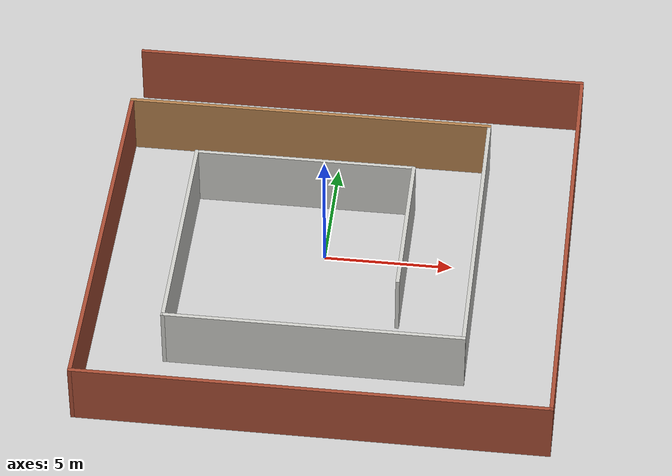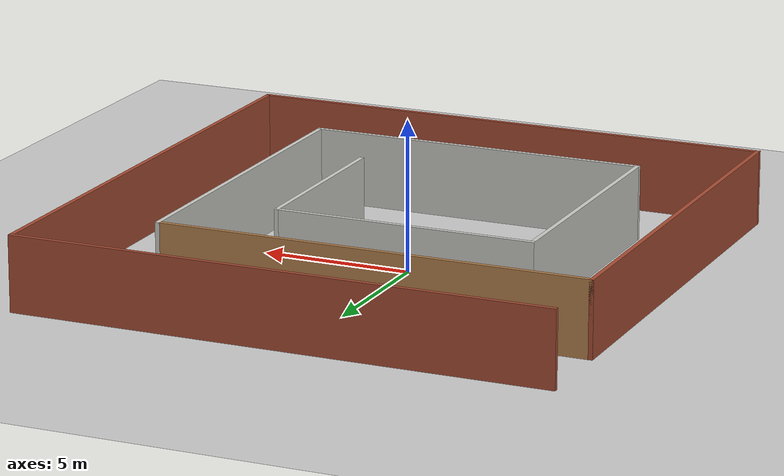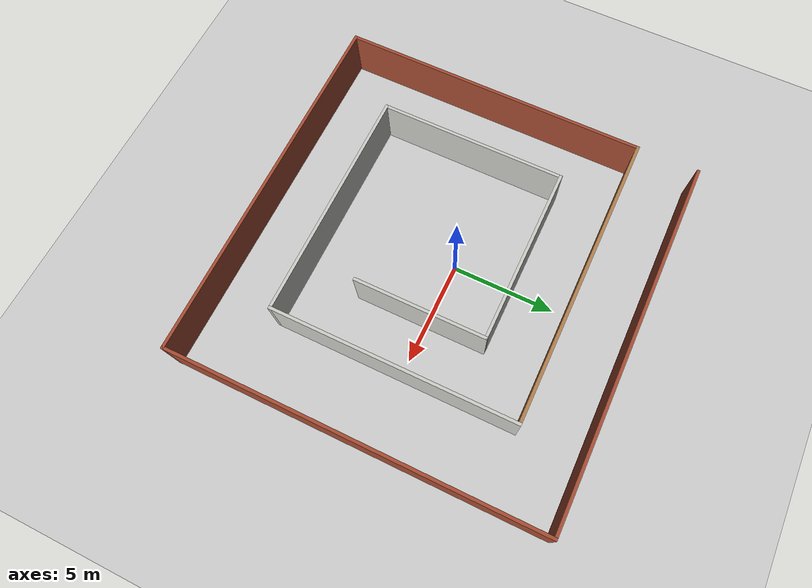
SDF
<sdf version="1.6">
 <world name="default">
  <plugin name="hi_robot" filename="libhi_robot.so"/>
  <light name="sun" type="directional">
   <pose>0 0 10 0 -0 0</pose>
   <diffuse>0.8 0.8 0.8 1</diffuse>
   <specular>0.2 0.2 0.2 1</specular>
   <attenuation>
    <range>1000</range>
    <constant>0.9</constant>
    <linear>0.01</linear>
    <quadratic>0.001</quadratic>
   </attenuation>
   <direction>-0.5 0.1 -0.9</direction>
  </light>
  <model name="ground_plane">
   <static>1</static>
   <link name="link">
    <collision name="collision">
     <geometry><plane><normal>0 0 1</normal><size>100 100</size></plane></geometry>
     <surface>
      <contact><collide_bitmask>65535</collide_bitmask></contact>
      <friction><ode><mu>100</mu><mu2>50</mu2></ode></friction>
     </surface>
    </collision>
    <visual name="visual">
     <cast_shadows>0</cast_shadows>
     <geometry><plane><normal>0 0 1</normal><size>100 100</size></plane></geometry>
     <material>
      <script><uri>file://media/materials/scripts/gazebo.material</uri><name>Gazebo/Grey</name></script>
     </material>
    </visual>
   </link>
  </model>
  <gravity>0 0 -9.8</gravity>
  <magnetic_field>6e-06 2.3e-05 -4.2e-05</magnetic_field>
  <atmosphere type="adiabatic"/>
  <physics name="default_physics" default="0" type="ode">
   <max_step_size>0.001</max_step_size>
   <real_time_factor>1</real_time_factor>
   <real_time_update_rate>1000</real_time_update_rate>
  </physics>
  <scene><ambient>0.4 0.4 0.4 1</ambient><background>0.7 0.7 0.7 1</background><shadows>1</shadows></scene>
  <audio><device>default</device></audio>
  <spherical_coordinates>
   <surface_model>EARTH_WGS84</surface_model>
   <latitude_deg>0</latitude_deg>
   <longitude_deg>0</longitude_deg>
   <elevation>0</elevation>
   <heading_deg>0</heading_deg>
  </spherical_coordinates>
  <model name="myhouse_0">
   <pose>0.51612 -0.40662 0 0 -0 0</pose>
   <link name="Wall_11">
    <collision name="Wall_11_Collision">
     <geometry><box><size>11.5 0.15 2.5</size></box></geometry>
     <pose>0 0 1.25 0 -0 0</pose>
    </collision>
    <visual name="Wall_11_Visual">
     <pose>0 0 1.25 0 -0 0</pose>
     <geometry><box><size>11.5 0.15 2.5</size></box></geometry>
     <material>
      <script><uri>file://media/materials/scripts/gazebo.material</uri><name>Gazebo/CeilingTiled</name></script>
      <ambient>1 1 1 1</ambient>
     </material>
     <meta><layer>0</layer></meta>
    </visual>
    <pose>-0.25 -5.8 0 0 -0 3.14159</pose>
   </link>
   <link name="Wall_12">
    <collision name="Wall_12_Collision">
     <geometry><box><size>9.25 0.15 2.5</size></box></geometry>
     <pose>0 0 1.25 0 -0 0</pose>
    </collision>
    <visual name="Wall_12_Visual">
     <pose>0 0 1.25 0 -0 0</pose>
     <geometry><box><size>9.25 0.15 2.5</size></box></geometry>
     <material>
      <script><uri>file://media/materials/scripts/gazebo.material</uri><name>Gazebo/CeilingTiled</name></script>
      <ambient>1 1 1 1</ambient>
     </material>
     <meta><layer>0</layer></meta>
    </visual>
    <pose>-5.925 -1.25 0 0 -0 1.5708</pose>
   </link>
   <link name="Wall_13">
    <collision name="Wall_13_Collision">
     <geometry><box><size>8.75 0.15 2.5</size></box></geometry>
     <pose>0 0 1.25 0 -0 0</pose>
    </collision>
    <visual name="Wall_13_Visual">
     <pose>0 0 1.25 0 -0 0</pose>
     <geometry><box><size>8.75 0.15 2.5</size></box></geometry>
     <material>
      <script><uri>file://media/materials/scripts/gazebo.material</uri><name>Gazebo/CeilingTiled</name></script>
      <ambient>1 1 1 1</ambient>
     </material>
     <meta><layer>0</layer></meta>
    </visual>
    <pose>-1.625 3.3 0 0 -0 0</pose>
   </link>
   <link name="Wall_14">
    <collision name="Wall_14_Collision">
     <geometry><box><size>6.5 0.15 2.5</size></box></geometry>
     <pose>0 0 1.25 0 -0 0</pose>
    </collision>
    <visual name="Wall_14_Visual">
     <pose>0 0 1.25 0 -0 0</pose>
     <geometry><box><size>6.5 0.15 2.5</size></box></geometry>
     <material>
      <script><uri>file://media/materials/scripts/gazebo.material</uri><name>Gazebo/CeilingTiled</name></script>
      <ambient>1 1 1 1</ambient>
     </material>
     <meta><layer>0</layer></meta>
    </visual>
    <pose>2.675 0.125 0 0 -0 -1.5708</pose>
   </link>
   <link name="Wall_3">
    <collision name="Wall_3_Collision">
     <geometry><box><size>18 0.15 2.5</size></box></geometry>
     <pose>0 0 1.25 0 -0 0</pose>
    </collision>
    <visual name="Wall_3_Visual">
     <pose>0 0 1.25 0 -0 0</pose>
     <geometry><box><size>18 0.15 2.5</size></box></geometry>
     <material>
      <script><uri>file://media/materials/scripts/gazebo.material</uri><name>Gazebo/Bricks</name></script>
      <ambient>1 1 1 1</ambient>
     </material>
     <meta><layer>0</layer></meta>
    </visual>
    <pose>0 9.05 0 0 -0 0</pose>
   </link>
   <link name="Wall_5">
    <collision name="Wall_5_Collision">
     <geometry><box><size>18.25 0.15 2.5</size></box></geometry>
     <pose>0 0 1.25 0 -0 0</pose>
    </collision>
    <visual name="Wall_5_Visual">
     <pose>0 0 1.25 0 -0 0</pose>
     <geometry><box><size>18.25 0.15 2.5</size></box></geometry>
     <material>
      <script><uri>file://media/materials/scripts/gazebo.material</uri><name>Gazebo/Bricks</name></script>
      <ambient>1 1 1 1</ambient>
     </material>
     <meta><layer>0</layer></meta>
    </visual>
    <pose>8.925 0 0 0 -0 -1.5708</pose>
   </link>
   <link name="Wall_6">
    <collision name="Wall_6_Collision">
     <geometry><box><size>18 0.15 2.5</size></box></geometry>
     <pose>0 0 1.25 0 -0 0</pose>
    </collision>
    <visual name="Wall_6_Visual">
     <pose>0 0 1.25 0 -0 0</pose>
     <geometry><box><size>18 0.15 2.5</size></box></geometry>
     <material>
      <script><uri>file://media/materials/scripts/gazebo.material</uri><name>Gazebo/Bricks</name></script>
      <ambient>1 1 1 1</ambient>
     </material>
     <meta><layer>0</layer></meta>
    </visual>
    <pose>0 -9.05 0 0 -0 3.14159</pose>
   </link>
   <link name="Wall_7">
    <collision name="Wall_7_Collision">
     <geometry><box><size>15.25 0.15 2.5</size></box></geometry>
     <pose>0 0 1.25 0 -0 0</pose>
    </collision>
    <visual name="Wall_7_Visual">
     <pose>0 0 1.25 0 -0 0</pose>
     <geometry><box><size>15.25 0.15 2.5</size></box></geometry>
     <material>
      <script><uri>file://media/materials/scripts/gazebo.material</uri><name>Gazebo/Bricks</name></script>
      <ambient>1 1 1 1</ambient>
     </material>
     <meta><layer>0</layer></meta>
    </visual>
    <pose>-8.925 -1.5 0 0 -0 1.5708</pose>
   </link>
   <link name="Wall_8">
    <collision name="Wall_8_Collision">
     <geometry><box><size>14.5 0.15 2.5</size></box></geometry>
     <pose>0 0 1.25 0 -0 0</pose>
    </collision>
    <visual name="Wall_8_Visual">
     <pose>0 0 1.25 0 -0 0</pose>
     <geometry><box><size>14.5 0.15 2.5</size></box></geometry>
     <material>
      <script><uri>file://media/materials/scripts/gazebo.material</uri><name>Gazebo/Wood</name></script>
      <ambient>1 1 1 1</ambient>
     </material>
     <meta><layer>0</layer></meta>
    </visual>
    <pose>-1.75 6.05 0 0 -0 0</pose>
   </link>
   <link name="Wall_9">
    <collision name="Wall_9_Collision">
     <geometry><box><size>12 0.15 2.5</size></box></geometry>
     <pose>0 0 1.25 0 -0 0</pose>
    </collision>
    <visual name="Wall_9_Visual">
     <pose>0 0 1.25 0 -0 0</pose>
     <geometry><box><size>12 0.15 2.5</size></box></geometry>
     <material>
      <script><uri>file://media/materials/scripts/gazebo.material</uri><name>Gazebo/CeilingTiled</name></script>
      <ambient>1 1 1 1</ambient>
     </material>
     <meta><layer>0</layer></meta>
    </visual>
    <pose>5.425 0.125 0 0 -0 -1.5708</pose>
   </link>
   <static>1</static>
  </model>
  <plugin filename="libcollision_map_creator.so" name="collision_map_creator"/>
 </world>
</sdf>
